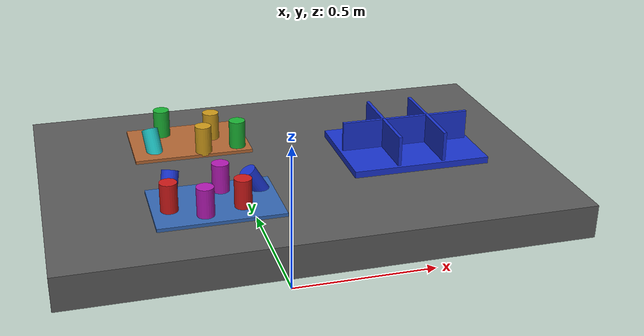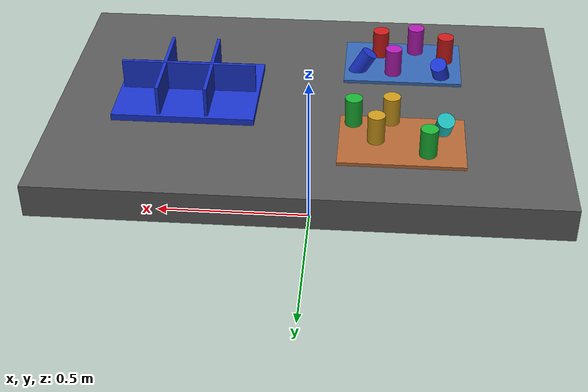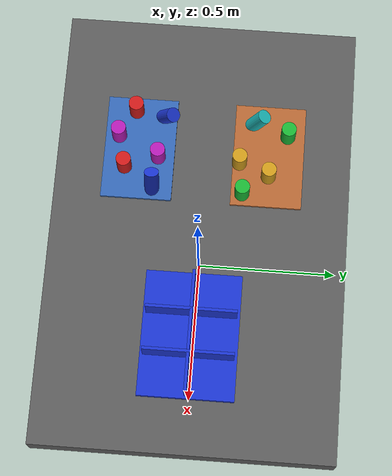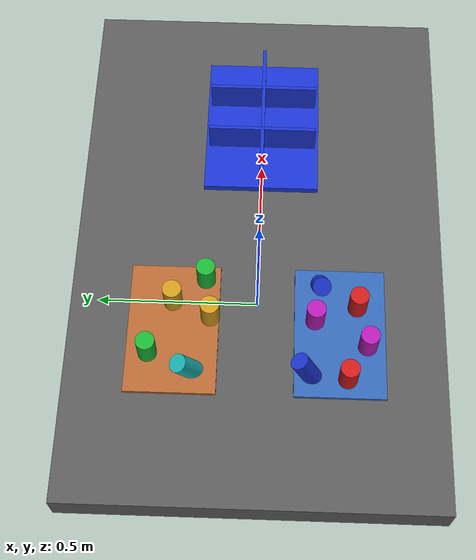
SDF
<?xml version="1.0" ?>
<sdf version="1.9">
  <!-- Standalone M1B scene.  The controller-backed Panda is spawned by the
       existing launch path; this file never alters the frozen M1A cube world. -->
  <world name="industrial_cylinder_v1">
    <physics name="bullet" type="bullet"><max_step_size>0.001</max_step_size><real_time_factor>1.0</real_time_factor></physics>
    <plugin name="gz::sim::systems::Physics" filename="gz-sim-physics-system"><engine><filename>gz-physics-bullet-featherstone-plugin</filename></engine></plugin>
    <plugin name="gz::sim::systems::UserCommands" filename="gz-sim-user-commands-system"/>
    <plugin name="gz::sim::systems::SceneBroadcaster" filename="gz-sim-scene-broadcaster-system"/>
    <plugin name="gz::sim::systems::Sensors" filename="gz-sim-sensors-system"><render_engine>ogre2</render_engine></plugin>
    <gravity>0 0 -9.81</gravity>
    <light type="directional" name="industrial_light"><pose>0 0 5 0 0 0</pose><direction>-0.3 0.2 -0.9</direction><diffuse>0.9 0.9 0.9 1</diffuse></light>
    <model name="industrial_work_table"><static>true</static><link name="link"><pose>0 0 0.4 0 0 0</pose><collision name="collision"><geometry><box><size>1.5 1.0 0.1</size></box></geometry></collision><visual name="visual"><geometry><box><size>1.5 1.0 0.1</size></box></geometry><material><diffuse>0.35 0.35 0.35 1</diffuse></material></visual></link></model>
    <model name="camera_fixture"><static>true</static><link name="camera_rgbd"><pose>-0.80 -0.80 1.40 0 0.77 0.93</pose><sensor name="front_rgbd" type="rgbd_camera"><always_on>1</always_on><update_rate>15</update_rate><topic>/xh/camera/rgbd</topic><camera><horizontal_fov>1.047</horizontal_fov><image><width>640</width><height>480</height><format>R8G8B8</format></image><clip><near>0.1</near><far>4.0</far></clip></camera></sensor></link></model>
    <model name="incoming_zone_a"><static>true</static><link name="link"><pose>-0.28 -0.22 0.455 0 0 0</pose><visual name="visual"><geometry><box><size>0.36 0.24 0.01</size></box></geometry><material><diffuse>0.2 0.4 0.7 1</diffuse></material></visual></link></model>
    <model name="incoming_zone_b"><static>true</static><link name="link"><pose>-0.28 0.22 0.455 0 0 0</pose><visual name="visual"><geometry><box><size>0.36 0.24 0.01</size></box></geometry><material><diffuse>0.7 0.4 0.2 1</diffuse></material></visual></link></model>
    <!-- M1B_RANDOM_PARTS_BEGIN -->
    <model name="cylinder_01"><pose>-0.2090 -0.2663 0.5000 0.0000 0.0000 -2.5172</pose><link name="link"><inertial><mass>0.06</mass></inertial><collision name="collision"><geometry><cylinder><radius>0.025</radius><length>0.09</length></cylinder></geometry></collision><visual name="visual"><geometry><cylinder><radius>0.025</radius><length>0.09</length></cylinder></geometry><material><diffuse>0.800 0.100 0.100 1</diffuse><specular>0.15 0.15 0.15 1</specular></material></visual></link></model>
    <model name="cylinder_02"><pose>-0.3532 0.2822 0.5000 3.1416 0.0000 -0.6045</pose><link name="link"><inertial><mass>0.06</mass></inertial><collision name="collision"><geometry><cylinder><radius>0.025</radius><length>0.09</length></cylinder></geometry></collision><visual name="visual"><geometry><cylinder><radius>0.025</radius><length>0.09</length></cylinder></geometry><material><diffuse>0.100 0.700 0.200 1</diffuse><specular>0.15 0.15 0.15 1</specular></material></visual></link></model>
    <model name="cylinder_03"><pose>-0.3947 -0.1335 0.4800 0.4500 -0.3000 -2.9942</pose><link name="link"><inertial><mass>0.06</mass></inertial><collision name="collision"><geometry><cylinder><radius>0.025</radius><length>0.09</length></cylinder></geometry></collision><visual name="visual"><geometry><cylinder><radius>0.025</radius><length>0.09</length></cylinder></geometry><material><diffuse>0.100 0.200 0.800 1</diffuse><specular>0.15 0.15 0.15 1</specular></material></visual></link></model>
    <model name="cylinder_04"><pose>-0.2061 0.2234 0.5000 0.0000 0.0000 -1.2061</pose><link name="link"><inertial><mass>0.06</mass></inertial><collision name="collision"><geometry><cylinder><radius>0.025</radius><length>0.09</length></cylinder></geometry></collision><visual name="visual"><geometry><cylinder><radius>0.025</radius><length>0.09</length></cylinder></geometry><material><diffuse>0.800 0.600 0.100 1</diffuse><specular>0.15 0.15 0.15 1</specular></material></visual></link></model>
    <model name="cylinder_05"><pose>-0.2499 -0.1545 0.5000 3.1416 0.0000 1.3579</pose><link name="link"><inertial><mass>0.06</mass></inertial><collision name="collision"><geometry><cylinder><radius>0.025</radius><length>0.09</length></cylinder></geometry></collision><visual name="visual"><geometry><cylinder><radius>0.025</radius><length>0.09</length></cylinder></geometry><material><diffuse>0.700 0.100 0.700 1</diffuse><specular>0.15 0.15 0.15 1</specular></material></visual></link></model>
    <model name="cylinder_06"><pose>-0.3971 0.1751 0.4800 0.4500 -0.3000 -2.3792</pose><link name="link"><inertial><mass>0.06</mass></inertial><collision name="collision"><geometry><cylinder><radius>0.025</radius><length>0.09</length></cylinder></geometry></collision><visual name="visual"><geometry><cylinder><radius>0.025</radius><length>0.09</length></cylinder></geometry><material><diffuse>0.100 0.700 0.700 1</diffuse><specular>0.15 0.15 0.15 1</specular></material></visual></link></model>
    <model name="cylinder_07"><pose>-0.4103 -0.2399 0.5000 0.0000 0.0000 -1.8393</pose><link name="link"><inertial><mass>0.06</mass></inertial><collision name="collision"><geometry><cylinder><radius>0.025</radius><length>0.09</length></cylinder></geometry></collision><visual name="visual"><geometry><cylinder><radius>0.025</radius><length>0.09</length></cylinder></geometry><material><diffuse>0.800 0.100 0.100 1</diffuse><specular>0.15 0.15 0.15 1</specular></material></visual></link></model>
    <model name="cylinder_08"><pose>-0.1393 0.1382 0.5000 3.1416 0.0000 -1.0678</pose><link name="link"><inertial><mass>0.06</mass></inertial><collision name="collision"><geometry><cylinder><radius>0.025</radius><length>0.09</length></cylinder></geometry></collision><visual name="visual"><geometry><cylinder><radius>0.025</radius><length>0.09</length></cylinder></geometry><material><diffuse>0.100 0.700 0.200 1</diffuse><specular>0.15 0.15 0.15 1</specular></material></visual></link></model>
    <model name="cylinder_09"><pose>-0.1531 -0.1684 0.4800 0.4500 -0.3000 -0.9564</pose><link name="link"><inertial><mass>0.06</mass></inertial><collision name="collision"><geometry><cylinder><radius>0.025</radius><length>0.09</length></cylinder></geometry></collision><visual name="visual"><geometry><cylinder><radius>0.025</radius><length>0.09</length></cylinder></geometry><material><diffuse>0.100 0.200 0.800 1</diffuse><specular>0.15 0.15 0.15 1</specular></material></visual></link></model>
    <model name="cylinder_10"><pose>-0.2480 0.1228 0.5000 0.0000 0.0000 0.5947</pose><link name="link"><inertial><mass>0.06</mass></inertial><collision name="collision"><geometry><cylinder><radius>0.025</radius><length>0.09</length></cylinder></geometry></collision><visual name="visual"><geometry><cylinder><radius>0.025</radius><length>0.09</length></cylinder></geometry><material><diffuse>0.800 0.600 0.100 1</diffuse><specular>0.15 0.15 0.15 1</specular></material></visual></link></model>
    <model name="cylinder_11"><pose>-0.3186 -0.2924 0.5000 3.1416 0.0000 1.7544</pose><link name="link"><inertial><mass>0.06</mass></inertial><collision name="collision"><geometry><cylinder><radius>0.025</radius><length>0.09</length></cylinder></geometry></collision><visual name="visual"><geometry><cylinder><radius>0.025</radius><length>0.09</length></cylinder></geometry><material><diffuse>0.700 0.100 0.700 1</diffuse><specular>0.15 0.15 0.15 1</specular></material></visual></link></model>
    <!-- M1B_RANDOM_PARTS_END -->
    <model name="blue_partition_bin"><static>true</static><pose>0.36 0 0.45 0 0 0</pose><link name="link"><collision name="floor"><pose>0 0 0.01 0 0 0</pose><geometry><box><size>0.42 0.32 0.02</size></box></geometry></collision><visual name="floor_visual"><pose>0 0 0.01 0 0 0</pose><geometry><box><size>0.42 0.32 0.02</size></box></geometry><material><diffuse>0.1 0.2 0.8 1</diffuse></material></visual><visual name="row_divider"><pose>0 0 0.06 0 0 0</pose><geometry><box><size>0.40 0.01 0.10</size></box></geometry><material><diffuse>0.1 0.2 0.8 1</diffuse></material></visual><visual name="col_divider_a"><pose>-0.07 0 0.06 0 0 0</pose><geometry><box><size>0.01 0.30 0.10</size></box></geometry><material><diffuse>0.1 0.2 0.8 1</diffuse></material></visual><visual name="col_divider_b"><pose>0.07 0 0.06 0 0 0</pose><geometry><box><size>0.01 0.30 0.10</size></box></geometry><material><diffuse>0.1 0.2 0.8 1</diffuse></material></visual></link></model>
    <!-- Reserved only: second table, bin transport corridor, stackable-bin
         collision volume, and second arm mounting namespace. -->
  </world>
</sdf>
